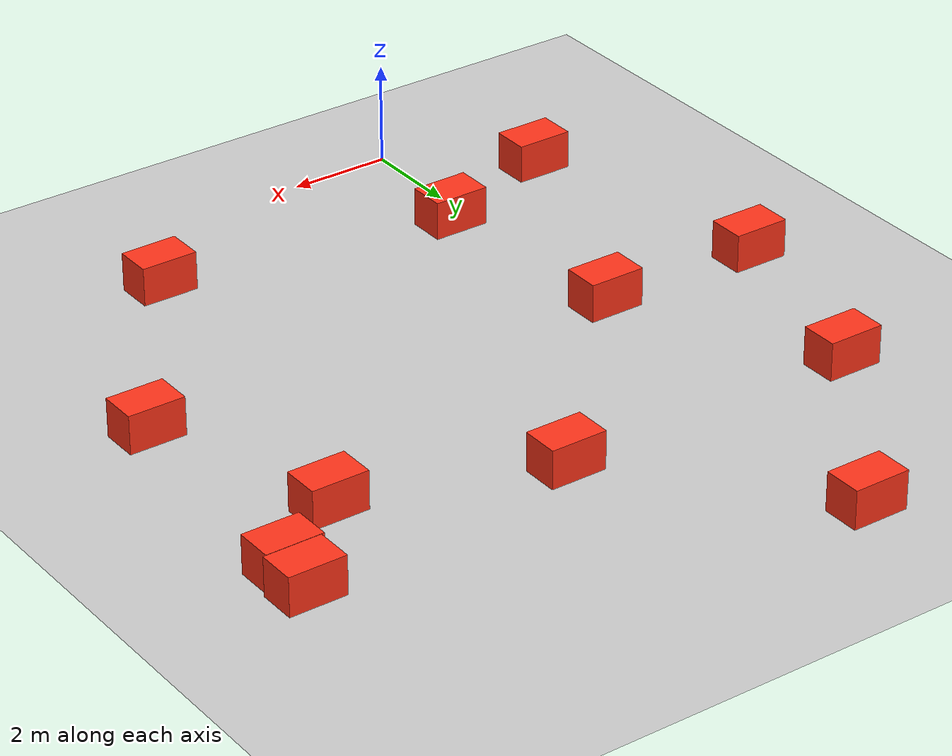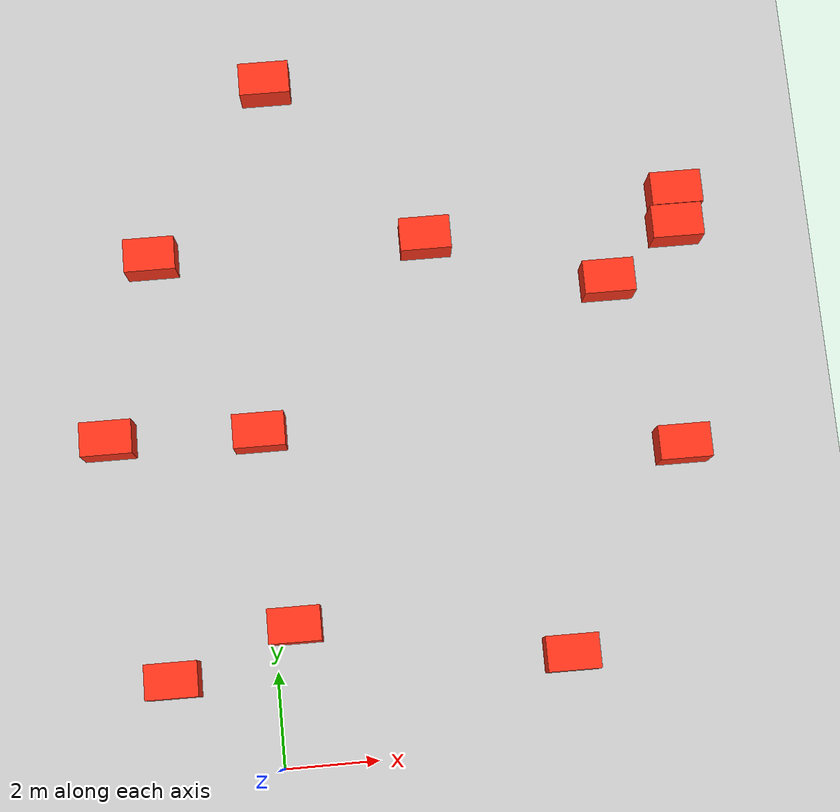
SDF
<sdf version="1.7">
 <world name="default">
  <model name="ground_plane">
   <static>1</static>
   <link name="link">
    <collision name="collision">
     <geometry><plane><normal>0 0 1</normal><size>100 100</size></plane></geometry>
     <surface>
      <contact><collide_bitmask>65535</collide_bitmask></contact>
      <friction><ode><mu>100</mu><mu2>50</mu2></ode></friction>
     </surface>
    </collision>
    <visual name="visual">
     <cast_shadows>0</cast_shadows>
     <geometry><plane><normal>0 0 1</normal><size>100 100</size></plane></geometry>
     <material>
      <script><uri>file://media/materials/scripts/gazebo.material</uri><name>Gazebo/Grey</name></script>
     </material>
    </visual>
   </link>
  </model>
  <model name="payload_box_clone_5_clone_10">
   <link name="link">
    <inertial>
     <mass>15</mass>
     <inertia><ixx>2.32332</ixx><ixy>0</ixy><ixz>0</ixz><iyy>1.43272</iyy><iyz>0</iyz><izz>2.2858</izz></inertia>
    </inertial>
    <visual name="visual">
     <geometry><box><size>0.747047 1.12719 0.766877</size></box></geometry>
     <material>
      <script><name>Gazebo/Grey</name><uri>file://media/materials/scripts/gazebo.material</uri></script>
      <shader type="pixel"><normal_map>__default__</normal_map></shader>
      <ambient>1 0.2 0.1 0</ambient>
      <diffuse>0.7 0.7 0.7 1</diffuse>
      <specular>0.01 0.01 0.01 1</specular>
      <emissive>0 0 0 1</emissive>
     </material>
    </visual>
    <collision name="collision">
     <geometry><box><size>0.747047 1.12719 0.766877</size></box></geometry>
     <surface>
      <friction>
       <ode><mu>1</mu><mu2>1</mu2><fdir1>0 0 0</fdir1><slip1>0</slip1><slip2>0</slip2></ode>
       <torsional>
        <coefficient>1</coefficient>
        <patch_radius>0</patch_radius>
        <surface_radius>0</surface_radius>
        <use_patch_radius>1</use_patch_radius>
        <ode><slip>0</slip></ode>
       </torsional>
      </friction>
      <bounce><restitution_coefficient>0</restitution_coefficient><threshold>1e+06</threshold></bounce>
      <contact>
       <collide_without_contact>0</collide_without_contact>
       <collide_without_contact_bitmask>1</collide_without_contact_bitmask>
       <collide_bitmask>1</collide_bitmask>
       <ode>
        <soft_cfm>0</soft_cfm>
        <soft_erp>0.2</soft_erp>
        <kp>1e+13</kp>
        <kd>1</kd>
        <max_vel>0.01</max_vel>
        <min_depth>0</min_depth>
       </ode>
       <bullet>
        <split_impulse>1</split_impulse>
        <split_impulse_penetration_threshold>-0.01</split_impulse_penetration_threshold>
        <soft_cfm>0</soft_cfm>
        <soft_erp>0.2</soft_erp>
        <kp>1e+13</kp>
        <kd>1</kd>
       </bullet>
      </contact>
     </surface>
    </collision>
   </link>
   <static>0</static>
   <pose>6.22353 1.88647 0.383438 0 -0 1.5709</pose>
  </model>
  <model name="payload_box_clone_5_clone_13">
   <link name="link">
    <inertial>
     <mass>15</mass>
     <inertia><ixx>2.32332</ixx><ixy>0</ixy><ixz>0</ixz><iyy>1.43272</iyy><iyz>0</iyz><izz>2.2858</izz></inertia>
    </inertial>
    <visual name="visual">
     <geometry><box><size>0.747047 1.12719 0.766877</size></box></geometry>
     <material>
      <script><name>Gazebo/Grey</name><uri>file://media/materials/scripts/gazebo.material</uri></script>
      <shader type="pixel"><normal_map>__default__</normal_map></shader>
      <ambient>1 0.2 0.1 0</ambient>
      <diffuse>0.7 0.7 0.7 1</diffuse>
      <specular>0.01 0.01 0.01 1</specular>
      <emissive>0 0 0 1</emissive>
     </material>
    </visual>
    <collision name="collision">
     <geometry><box><size>0.747047 1.12719 0.766877</size></box></geometry>
     <surface>
      <friction>
       <ode><mu>1</mu><mu2>1</mu2><fdir1>0 0 0</fdir1><slip1>0</slip1><slip2>0</slip2></ode>
       <torsional>
        <coefficient>1</coefficient>
        <patch_radius>0</patch_radius>
        <surface_radius>0</surface_radius>
        <use_patch_radius>1</use_patch_radius>
        <ode><slip>0</slip></ode>
       </torsional>
      </friction>
      <bounce><restitution_coefficient>0</restitution_coefficient><threshold>1e+06</threshold></bounce>
      <contact>
       <collide_without_contact>0</collide_without_contact>
       <collide_without_contact_bitmask>1</collide_without_contact_bitmask>
       <collide_bitmask>1</collide_bitmask>
       <ode>
        <soft_cfm>0</soft_cfm>
        <soft_erp>0.2</soft_erp>
        <kp>1e+13</kp>
        <kd>1</kd>
        <max_vel>0.01</max_vel>
        <min_depth>0</min_depth>
       </ode>
       <bullet>
        <split_impulse>1</split_impulse>
        <split_impulse_penetration_threshold>-0.01</split_impulse_penetration_threshold>
        <soft_cfm>0</soft_cfm>
        <soft_erp>0.2</soft_erp>
        <kp>1e+13</kp>
        <kd>1</kd>
       </bullet>
      </contact>
     </surface>
    </collision>
   </link>
   <static>0</static>
   <pose>-2.19685 2.00197 0.383438 0 -0 1.5709</pose>
  </model>
  <model name="payload_box_clone_5_clone_16">
   <link name="link">
    <inertial>
     <mass>15</mass>
     <inertia><ixx>2.32332</ixx><ixy>0</ixy><ixz>0</ixz><iyy>1.43272</iyy><iyz>0</iyz><izz>2.2858</izz></inertia>
    </inertial>
    <visual name="visual">
     <geometry><box><size>0.747047 1.12719 0.766877</size></box></geometry>
     <material>
      <script><name>Gazebo/Grey</name><uri>file://media/materials/scripts/gazebo.material</uri></script>
      <shader type="pixel"><normal_map>__default__</normal_map></shader>
      <ambient>1 0.2 0.1 0</ambient>
      <diffuse>0.7 0.7 0.7 1</diffuse>
      <specular>0.01 0.01 0.01 1</specular>
      <emissive>0 0 0 1</emissive>
     </material>
    </visual>
    <collision name="collision">
     <geometry><box><size>0.747047 1.12719 0.766877</size></box></geometry>
     <surface>
      <friction>
       <ode><mu>1</mu><mu2>1</mu2><fdir1>0 0 0</fdir1><slip1>0</slip1><slip2>0</slip2></ode>
       <torsional>
        <coefficient>1</coefficient>
        <patch_radius>0</patch_radius>
        <surface_radius>0</surface_radius>
        <use_patch_radius>1</use_patch_radius>
        <ode><slip>0</slip></ode>
       </torsional>
      </friction>
      <bounce><restitution_coefficient>0</restitution_coefficient><threshold>1e+06</threshold></bounce>
      <contact>
       <collide_without_contact>0</collide_without_contact>
       <collide_without_contact_bitmask>1</collide_without_contact_bitmask>
       <collide_bitmask>1</collide_bitmask>
       <ode>
        <soft_cfm>0</soft_cfm>
        <soft_erp>0.2</soft_erp>
        <kp>1e+13</kp>
        <kd>1</kd>
        <max_vel>0.01</max_vel>
        <min_depth>0</min_depth>
       </ode>
       <bullet>
        <split_impulse>1</split_impulse>
        <split_impulse_penetration_threshold>-0.01</split_impulse_penetration_threshold>
        <soft_cfm>0</soft_cfm>
        <soft_erp>0.2</soft_erp>
        <kp>1e+13</kp>
        <kd>1</kd>
       </bullet>
      </contact>
     </surface>
    </collision>
   </link>
   <static>0</static>
   <pose>0.442507 2.94292 0.383438 0 -0 1.5709</pose>
  </model>
  <model name="payload_box_clone_5_clone_18">
   <link name="link">
    <inertial>
     <mass>15</mass>
     <inertia><ixx>2.32332</ixx><ixy>0</ixy><ixz>0</ixz><iyy>1.43272</iyy><iyz>0</iyz><izz>2.2858</izz></inertia>
    </inertial>
    <visual name="visual">
     <geometry><box><size>0.747047 1.12719 0.766877</size></box></geometry>
     <material>
      <script><name>Gazebo/Grey</name><uri>file://media/materials/scripts/gazebo.material</uri></script>
      <shader type="pixel"><normal_map>__default__</normal_map></shader>
      <ambient>1 0.2 0.1 0</ambient>
      <diffuse>0.7 0.7 0.7 1</diffuse>
      <specular>0.01 0.01 0.01 1</specular>
      <emissive>0 0 0 1</emissive>
     </material>
    </visual>
    <collision name="collision">
     <geometry><box><size>0.747047 1.12719 0.766877</size></box></geometry>
     <surface>
      <friction>
       <ode><mu>1</mu><mu2>1</mu2><fdir1>0 0 0</fdir1><slip1>0</slip1><slip2>0</slip2></ode>
       <torsional>
        <coefficient>1</coefficient>
        <patch_radius>0</patch_radius>
        <surface_radius>0</surface_radius>
        <use_patch_radius>1</use_patch_radius>
        <ode><slip>0</slip></ode>
       </torsional>
      </friction>
      <bounce><restitution_coefficient>0</restitution_coefficient><threshold>1e+06</threshold></bounce>
      <contact>
       <collide_without_contact>0</collide_without_contact>
       <collide_without_contact_bitmask>1</collide_without_contact_bitmask>
       <collide_bitmask>1</collide_bitmask>
       <ode>
        <soft_cfm>0</soft_cfm>
        <soft_erp>0.2</soft_erp>
        <kp>1e+13</kp>
        <kd>1</kd>
        <max_vel>0.01</max_vel>
        <min_depth>0</min_depth>
       </ode>
       <bullet>
        <split_impulse>1</split_impulse>
        <split_impulse_penetration_threshold>-0.01</split_impulse_penetration_threshold>
        <soft_cfm>0</soft_cfm>
        <soft_erp>0.2</soft_erp>
        <kp>1e+13</kp>
        <kd>1</kd>
       </bullet>
      </contact>
     </surface>
    </collision>
   </link>
   <static>0</static>
   <pose>9.0877 6.14162 0.383438 0 -0 1.5709</pose>
  </model>
  <model name="payload_box_clone_5_clone_19">
   <link name="link">
    <inertial>
     <mass>15</mass>
     <inertia><ixx>2.32332</ixx><ixy>0</ixy><ixz>0</ixz><iyy>1.43272</iyy><iyz>0</iyz><izz>2.2858</izz></inertia>
    </inertial>
    <visual name="visual">
     <geometry><box><size>0.747047 1.12719 0.766877</size></box></geometry>
     <material>
      <script><name>Gazebo/Grey</name><uri>file://media/materials/scripts/gazebo.material</uri></script>
      <shader type="pixel"><normal_map>__default__</normal_map></shader>
      <ambient>1 0.2 0.1 0</ambient>
      <diffuse>0.7 0.7 0.7 1</diffuse>
      <specular>0.01 0.01 0.01 1</specular>
      <emissive>0 0 0 1</emissive>
     </material>
    </visual>
    <collision name="collision">
     <geometry><box><size>0.747047 1.12719 0.766877</size></box></geometry>
     <surface>
      <friction>
       <ode><mu>1</mu><mu2>1</mu2><fdir1>0 0 0</fdir1><slip1>0</slip1><slip2>0</slip2></ode>
       <torsional>
        <coefficient>1</coefficient>
        <patch_radius>0</patch_radius>
        <surface_radius>0</surface_radius>
        <use_patch_radius>1</use_patch_radius>
        <ode><slip>0</slip></ode>
       </torsional>
      </friction>
      <bounce><restitution_coefficient>0</restitution_coefficient><threshold>1e+06</threshold></bounce>
      <contact>
       <collide_without_contact>0</collide_without_contact>
       <collide_without_contact_bitmask>1</collide_without_contact_bitmask>
       <collide_bitmask>1</collide_bitmask>
       <ode>
        <soft_cfm>0</soft_cfm>
        <soft_erp>0.2</soft_erp>
        <kp>1e+13</kp>
        <kd>1</kd>
        <max_vel>0.01</max_vel>
        <min_depth>0</min_depth>
       </ode>
       <bullet>
        <split_impulse>1</split_impulse>
        <split_impulse_penetration_threshold>-0.01</split_impulse_penetration_threshold>
        <soft_cfm>0</soft_cfm>
        <soft_erp>0.2</soft_erp>
        <kp>1e+13</kp>
        <kd>1</kd>
       </bullet>
      </contact>
     </surface>
    </collision>
   </link>
   <static>0</static>
   <pose>-0.03112 7.15043 0.383438 0 -0 1.5709</pose>
  </model>
  <model name="payload_box_clone_5_clone_20">
   <link name="link">
    <inertial>
     <mass>15</mass>
     <inertia><ixx>2.32332</ixx><ixy>0</ixy><ixz>0</ixz><iyy>1.43272</iyy><iyz>0</iyz><izz>2.2858</izz></inertia>
    </inertial>
    <visual name="visual">
     <geometry><box><size>0.747047 1.12719 0.766877</size></box></geometry>
     <material>
      <script><name>Gazebo/Grey</name><uri>file://media/materials/scripts/gazebo.material</uri></script>
      <shader type="pixel"><normal_map>__default__</normal_map></shader>
      <ambient>1 0.2 0.1 0</ambient>
      <diffuse>0.7 0.7 0.7 1</diffuse>
      <specular>0.01 0.01 0.01 1</specular>
      <emissive>0 0 0 1</emissive>
     </material>
    </visual>
    <collision name="collision">
     <geometry><box><size>0.747047 1.12719 0.766877</size></box></geometry>
     <surface>
      <friction>
       <ode><mu>1</mu><mu2>1</mu2><fdir1>0 0 0</fdir1><slip1>0</slip1><slip2>0</slip2></ode>
       <torsional>
        <coefficient>1</coefficient>
        <patch_radius>0</patch_radius>
        <surface_radius>0</surface_radius>
        <use_patch_radius>1</use_patch_radius>
        <ode><slip>0</slip></ode>
       </torsional>
      </friction>
      <bounce><restitution_coefficient>0</restitution_coefficient><threshold>1e+06</threshold></bounce>
      <contact>
       <collide_without_contact>0</collide_without_contact>
       <collide_without_contact_bitmask>1</collide_without_contact_bitmask>
       <collide_bitmask>1</collide_bitmask>
       <ode>
        <soft_cfm>0</soft_cfm>
        <soft_erp>0.2</soft_erp>
        <kp>1e+13</kp>
        <kd>1</kd>
        <max_vel>0.01</max_vel>
        <min_depth>0</min_depth>
       </ode>
       <bullet>
        <split_impulse>1</split_impulse>
        <split_impulse_penetration_threshold>-0.01</split_impulse_penetration_threshold>
        <soft_cfm>0</soft_cfm>
        <soft_erp>0.2</soft_erp>
        <kp>1e+13</kp>
        <kd>1</kd>
       </bullet>
      </contact>
     </surface>
    </collision>
   </link>
   <static>0</static>
   <pose>-3.31997 7.24294 0.383438 0 -0 1.5709</pose>
  </model>
  <model name="payload_box_clone_5_clone_22">
   <link name="link">
    <inertial>
     <mass>15</mass>
     <inertia><ixx>2.32332</ixx><ixy>0</ixy><ixz>0</ixz><iyy>1.43272</iyy><iyz>0</iyz><izz>2.2858</izz></inertia>
    </inertial>
    <visual name="visual">
     <geometry><box><size>0.747047 1.12719 0.766877</size></box></geometry>
     <material>
      <script><name>Gazebo/Grey</name><uri>file://media/materials/scripts/gazebo.material</uri></script>
      <shader type="pixel"><normal_map>__default__</normal_map></shader>
      <ambient>1 0.2 0.1 0</ambient>
      <diffuse>0.7 0.7 0.7 1</diffuse>
      <specular>0.01 0.01 0.01 1</specular>
      <emissive>0 0 0 1</emissive>
     </material>
    </visual>
    <collision name="collision">
     <geometry><box><size>0.747047 1.12719 0.766877</size></box></geometry>
     <surface>
      <friction>
       <ode><mu>1</mu><mu2>1</mu2><fdir1>0 0 0</fdir1><slip1>0</slip1><slip2>0</slip2></ode>
       <torsional>
        <coefficient>1</coefficient>
        <patch_radius>0</patch_radius>
        <surface_radius>0</surface_radius>
        <use_patch_radius>1</use_patch_radius>
        <ode><slip>0</slip></ode>
       </torsional>
      </friction>
      <bounce><restitution_coefficient>0</restitution_coefficient><threshold>1e+06</threshold></bounce>
      <contact>
       <collide_without_contact>0</collide_without_contact>
       <collide_without_contact_bitmask>1</collide_without_contact_bitmask>
       <collide_bitmask>1</collide_bitmask>
       <ode>
        <soft_cfm>0</soft_cfm>
        <soft_erp>0.2</soft_erp>
        <kp>1e+13</kp>
        <kd>1</kd>
        <max_vel>0.01</max_vel>
        <min_depth>0</min_depth>
       </ode>
       <bullet>
        <split_impulse>1</split_impulse>
        <split_impulse_penetration_threshold>-0.01</split_impulse_penetration_threshold>
        <soft_cfm>0</soft_cfm>
        <soft_erp>0.2</soft_erp>
        <kp>1e+13</kp>
        <kd>1</kd>
       </bullet>
      </contact>
     </surface>
    </collision>
   </link>
   <static>0</static>
   <pose>7.86278 9.9374 0.383438 0 -0 1.5709</pose>
  </model>
  <model name="payload_box_clone_5_clone_23">
   <link name="link">
    <inertial>
     <mass>15</mass>
     <inertia><ixx>2.32332</ixx><ixy>0</ixy><ixz>0</ixz><iyy>1.43272</iyy><iyz>0</iyz><izz>2.2858</izz></inertia>
    </inertial>
    <visual name="visual">
     <geometry><box><size>0.747047 1.12719 0.766877</size></box></geometry>
     <material>
      <script><name>Gazebo/Grey</name><uri>file://media/materials/scripts/gazebo.material</uri></script>
      <shader type="pixel"><normal_map>__default__</normal_map></shader>
      <ambient>1 0.2 0.1 0</ambient>
      <diffuse>0.7 0.7 0.7 1</diffuse>
      <specular>0.01 0.01 0.01 1</specular>
      <emissive>0 0 0 1</emissive>
     </material>
    </visual>
    <collision name="collision">
     <geometry><box><size>0.747047 1.12719 0.766877</size></box></geometry>
     <surface>
      <friction>
       <ode><mu>1</mu><mu2>1</mu2><fdir1>0 0 0</fdir1><slip1>0</slip1><slip2>0</slip2></ode>
       <torsional>
        <coefficient>1</coefficient>
        <patch_radius>0</patch_radius>
        <surface_radius>0</surface_radius>
        <use_patch_radius>1</use_patch_radius>
        <ode><slip>0</slip></ode>
       </torsional>
      </friction>
      <bounce><restitution_coefficient>0</restitution_coefficient><threshold>1e+06</threshold></bounce>
      <contact>
       <collide_without_contact>0</collide_without_contact>
       <collide_without_contact_bitmask>1</collide_without_contact_bitmask>
       <collide_bitmask>1</collide_bitmask>
       <ode>
        <soft_cfm>0</soft_cfm>
        <soft_erp>0.2</soft_erp>
        <kp>1e+13</kp>
        <kd>1</kd>
        <max_vel>0.01</max_vel>
        <min_depth>0</min_depth>
       </ode>
       <bullet>
        <split_impulse>1</split_impulse>
        <split_impulse_penetration_threshold>-0.01</split_impulse_penetration_threshold>
        <soft_cfm>0</soft_cfm>
        <soft_erp>0.2</soft_erp>
        <kp>1e+13</kp>
        <kd>1</kd>
       </bullet>
      </contact>
     </surface>
    </collision>
   </link>
   <static>0</static>
   <pose>9.50171 11.0764 0.383438 0 -0 1.5709</pose>
  </model>
  <model name="payload_box_clone_5_clone_24">
   <link name="link">
    <inertial>
     <mass>15</mass>
     <inertia><ixx>2.32332</ixx><ixy>0</ixy><ixz>0</ixz><iyy>1.43272</iyy><iyz>0</iyz><izz>2.2858</izz></inertia>
    </inertial>
    <visual name="visual">
     <geometry><box><size>0.747047 1.12719 0.766877</size></box></geometry>
     <material>
      <script><name>Gazebo/Grey</name><uri>file://media/materials/scripts/gazebo.material</uri></script>
      <shader type="pixel"><normal_map>__default__</normal_map></shader>
      <ambient>1 0.2 0.1 0</ambient>
      <diffuse>0.7 0.7 0.7 1</diffuse>
      <specular>0.01 0.01 0.01 1</specular>
      <emissive>0 0 0 1</emissive>
     </material>
    </visual>
    <collision name="collision">
     <geometry><box><size>0.747047 1.12719 0.766877</size></box></geometry>
     <surface>
      <friction>
       <ode><mu>1</mu><mu2>1</mu2><fdir1>0 0 0</fdir1><slip1>0</slip1><slip2>0</slip2></ode>
       <torsional>
        <coefficient>1</coefficient>
        <patch_radius>0</patch_radius>
        <surface_radius>0</surface_radius>
        <use_patch_radius>1</use_patch_radius>
        <ode><slip>0</slip></ode>
       </torsional>
      </friction>
      <bounce><restitution_coefficient>0</restitution_coefficient><threshold>1e+06</threshold></bounce>
      <contact>
       <collide_without_contact>0</collide_without_contact>
       <collide_without_contact_bitmask>1</collide_without_contact_bitmask>
       <collide_bitmask>1</collide_bitmask>
       <ode>
        <soft_cfm>0</soft_cfm>
        <soft_erp>0.2</soft_erp>
        <kp>1e+13</kp>
        <kd>1</kd>
        <max_vel>0.01</max_vel>
        <min_depth>0</min_depth>
       </ode>
       <bullet>
        <split_impulse>1</split_impulse>
        <split_impulse_penetration_threshold>-0.01</split_impulse_penetration_threshold>
        <soft_cfm>0</soft_cfm>
        <soft_erp>0.2</soft_erp>
        <kp>1e+13</kp>
        <kd>1</kd>
       </bullet>
      </contact>
     </surface>
    </collision>
   </link>
   <static>0</static>
   <pose>9.56595 11.8328 0.383438 0 -0 1.5709</pose>
  </model>
  <model name="payload_box_clone_5_clone_25">
   <link name="link">
    <inertial>
     <mass>15</mass>
     <inertia><ixx>2.32332</ixx><ixy>0</ixy><ixz>0</ixz><iyy>1.43272</iyy><iyz>0</iyz><izz>2.2858</izz></inertia>
    </inertial>
    <visual name="visual">
     <geometry><box><size>0.747047 1.12719 0.766877</size></box></geometry>
     <material>
      <script><name>Gazebo/Grey</name><uri>file://media/materials/scripts/gazebo.material</uri></script>
      <shader type="pixel"><normal_map>__default__</normal_map></shader>
      <ambient>1 0.2 0.1 0</ambient>
      <diffuse>0.7 0.7 0.7 1</diffuse>
      <specular>0.01 0.01 0.01 1</specular>
      <emissive>0 0 0 1</emissive>
     </material>
    </visual>
    <collision name="collision">
     <geometry><box><size>0.747047 1.12719 0.766877</size></box></geometry>
     <surface>
      <friction>
       <ode><mu>1</mu><mu2>1</mu2><fdir1>0 0 0</fdir1><slip1>0</slip1><slip2>0</slip2></ode>
       <torsional>
        <coefficient>1</coefficient>
        <patch_radius>0</patch_radius>
        <surface_radius>0</surface_radius>
        <use_patch_radius>1</use_patch_radius>
        <ode><slip>0</slip></ode>
       </torsional>
      </friction>
      <bounce><restitution_coefficient>0</restitution_coefficient><threshold>1e+06</threshold></bounce>
      <contact>
       <collide_without_contact>0</collide_without_contact>
       <collide_without_contact_bitmask>1</collide_without_contact_bitmask>
       <collide_bitmask>1</collide_bitmask>
       <ode>
        <soft_cfm>0</soft_cfm>
        <soft_erp>0.2</soft_erp>
        <kp>1e+13</kp>
        <kd>1</kd>
        <max_vel>0.01</max_vel>
        <min_depth>0</min_depth>
       </ode>
       <bullet>
        <split_impulse>1</split_impulse>
        <split_impulse_penetration_threshold>-0.01</split_impulse_penetration_threshold>
        <soft_cfm>0</soft_cfm>
        <soft_erp>0.2</soft_erp>
        <kp>1e+13</kp>
        <kd>1</kd>
       </bullet>
      </contact>
     </surface>
    </collision>
   </link>
   <static>0</static>
   <pose>3.9177 11.243 0.383438 0 -0 1.5709</pose>
  </model>
  <model name="payload_box_clone_5_clone_26">
   <link name="link">
    <inertial>
     <mass>15</mass>
     <inertia><ixx>2.32332</ixx><ixy>0</ixy><ixz>0</ixz><iyy>1.43272</iyy><iyz>0</iyz><izz>2.2858</izz></inertia>
    </inertial>
    <visual name="visual">
     <geometry><box><size>0.747047 1.12719 0.766877</size></box></geometry>
     <material>
      <script><name>Gazebo/Grey</name><uri>file://media/materials/scripts/gazebo.material</uri></script>
      <shader type="pixel"><normal_map>__default__</normal_map></shader>
      <ambient>1 0.2 0.1 0</ambient>
      <diffuse>0.7 0.7 0.7 1</diffuse>
      <specular>0.01 0.01 0.01 1</specular>
      <emissive>0 0 0 1</emissive>
     </material>
    </visual>
    <collision name="collision">
     <geometry><box><size>0.747047 1.12719 0.766877</size></box></geometry>
     <surface>
      <friction>
       <ode><mu>1</mu><mu2>1</mu2><fdir1>0 0 0</fdir1><slip1>0</slip1><slip2>0</slip2></ode>
       <torsional>
        <coefficient>1</coefficient>
        <patch_radius>0</patch_radius>
        <surface_radius>0</surface_radius>
        <use_patch_radius>1</use_patch_radius>
        <ode><slip>0</slip></ode>
       </torsional>
      </friction>
      <bounce><restitution_coefficient>0</restitution_coefficient><threshold>1e+06</threshold></bounce>
      <contact>
       <collide_without_contact>0</collide_without_contact>
       <collide_without_contact_bitmask>1</collide_without_contact_bitmask>
       <collide_bitmask>1</collide_bitmask>
       <ode>
        <soft_cfm>0</soft_cfm>
        <soft_erp>0.2</soft_erp>
        <kp>1e+13</kp>
        <kd>1</kd>
        <max_vel>0.01</max_vel>
        <min_depth>0</min_depth>
       </ode>
       <bullet>
        <split_impulse>1</split_impulse>
        <split_impulse_penetration_threshold>-0.01</split_impulse_penetration_threshold>
        <soft_cfm>0</soft_cfm>
        <soft_erp>0.2</soft_erp>
        <kp>1e+13</kp>
        <kd>1</kd>
       </bullet>
      </contact>
     </surface>
    </collision>
   </link>
   <static>0</static>
   <pose>-2.17649 11.263 0.383438 0 -0 1.5709</pose>
  </model>
  <model name="payload_box_clone_5_clone_27">
   <link name="link">
    <inertial>
     <mass>15</mass>
     <inertia><ixx>2.32332</ixx><ixy>0</ixy><ixz>0</ixz><iyy>1.43272</iyy><iyz>0</iyz><izz>2.2858</izz></inertia>
    </inertial>
    <visual name="visual">
     <geometry><box><size>0.747047 1.12719 0.766877</size></box></geometry>
     <material>
      <script><name>Gazebo/Grey</name><uri>file://media/materials/scripts/gazebo.material</uri></script>
      <shader type="pixel"><normal_map>__default__</normal_map></shader>
      <ambient>1 0.2 0.1 0</ambient>
      <diffuse>0.7 0.7 0.7 1</diffuse>
      <specular>0.01 0.01 0.01 1</specular>
      <emissive>0 0 0 1</emissive>
     </material>
    </visual>
    <collision name="collision">
     <geometry><box><size>0.747047 1.12719 0.766877</size></box></geometry>
     <surface>
      <friction>
       <ode><mu>1</mu><mu2>1</mu2><fdir1>0 0 0</fdir1><slip1>0</slip1><slip2>0</slip2></ode>
       <torsional>
        <coefficient>1</coefficient>
        <patch_radius>0</patch_radius>
        <surface_radius>0</surface_radius>
        <use_patch_radius>1</use_patch_radius>
        <ode><slip>0</slip></ode>
       </torsional>
      </friction>
      <bounce><restitution_coefficient>0</restitution_coefficient><threshold>1e+06</threshold></bounce>
      <contact>
       <collide_without_contact>0</collide_without_contact>
       <collide_without_contact_bitmask>1</collide_without_contact_bitmask>
       <collide_bitmask>1</collide_bitmask>
       <ode>
        <soft_cfm>0</soft_cfm>
        <soft_erp>0.2</soft_erp>
        <kp>1e+13</kp>
        <kd>1</kd>
        <max_vel>0.01</max_vel>
        <min_depth>0</min_depth>
       </ode>
       <bullet>
        <split_impulse>1</split_impulse>
        <split_impulse_penetration_threshold>-0.01</split_impulse_penetration_threshold>
        <soft_cfm>0</soft_cfm>
        <soft_erp>0.2</soft_erp>
        <kp>1e+13</kp>
        <kd>1</kd>
       </bullet>
      </contact>
     </surface>
    </collision>
   </link>
   <static>0</static>
   <pose>0.612798 15.165 0.383436 0 -6e-06 1.57088</pose>
  </model>
 </world>
</sdf>
